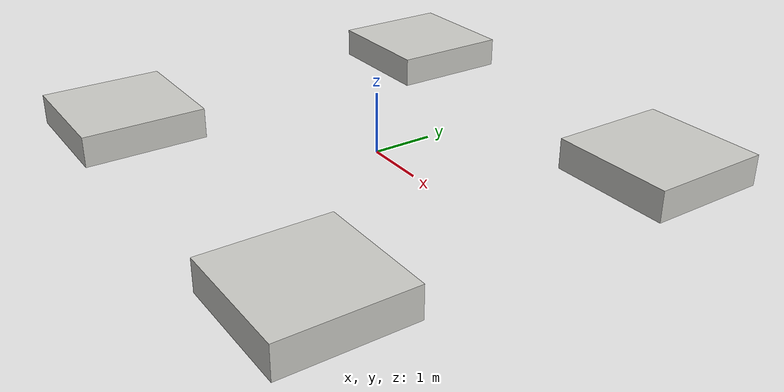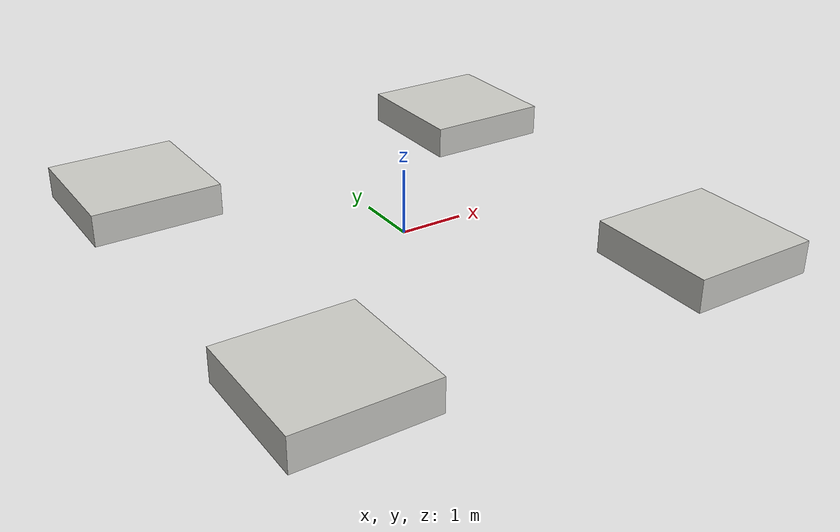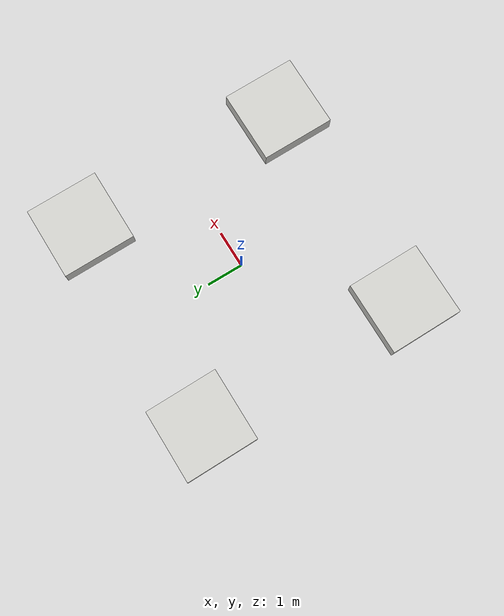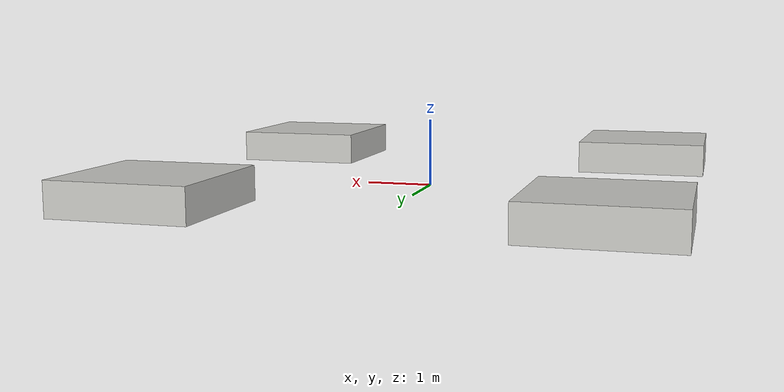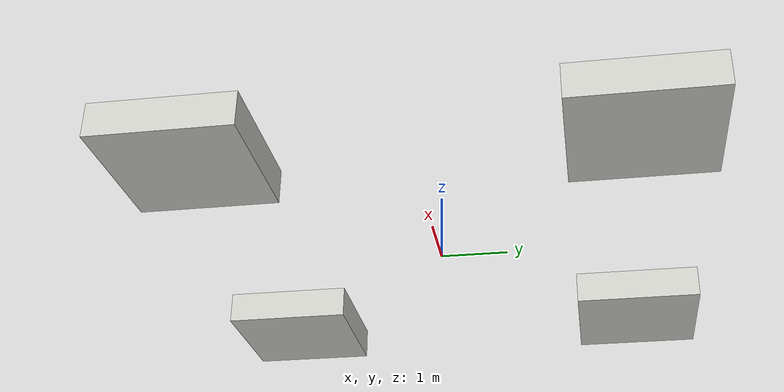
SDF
<?xml version='1.0'?>
<sdf version='1.7'>
  <model name='obstacles'>
    <link name='Wall_16'>
      <pose>-3 -3 0 0 -0 0</pose>
      <self_collide>0</self_collide>
      <enable_wind>0</enable_wind>
      <kinematic>0</kinematic>
      <visual name='Wall_16_Visual'>
        <pose>0 0 0.25 0 -0 0</pose>
        <geometry>
          <box>
            <size>2 2 0.5</size>
          </box>
        </geometry>
        <material>
          <script>
            <uri>file://media/materials/scripts/gazebo.material</uri>
            <name>Gazebo/CeilingTiled</name>
          </script>
          <ambient>0.760784 0.662745 0.627451 1</ambient>
          <shader type='pixel'/>
        </material>
        <meta>
          <layer>0</layer>
        </meta>
        <transparency>0</transparency>
        <cast_shadows>1</cast_shadows>
      </visual>
      <collision name='Wall_16_Collision'>
        <laser_retro>0</laser_retro>
        <max_contacts>10</max_contacts>
        <pose>0 0 0.25 0 -0 0</pose>
        <geometry>
          <box>
            <size>2 2 0.5</size>
          </box>
        </geometry>
        <surface>
          <friction>
            <ode>
              <mu>1</mu>
              <mu2>1</mu2>
              <fdir1>0 0 0</fdir1>
              <slip1>0</slip1>
              <slip2>0</slip2>
            </ode>
            <torsional>
              <coefficient>1</coefficient>
              <patch_radius>0</patch_radius>
              <surface_radius>0</surface_radius>
              <use_patch_radius>1</use_patch_radius>
              <ode>
                <slip>0</slip>
              </ode>
            </torsional>
          </friction>
          <bounce>
            <restitution_coefficient>0</restitution_coefficient>
            <threshold>1e+06</threshold>
          </bounce>
          <contact>
            <collide_without_contact>0</collide_without_contact>
            <collide_without_contact_bitmask>1</collide_without_contact_bitmask>
            <collide_bitmask>1</collide_bitmask>
            <ode>
              <soft_cfm>0</soft_cfm>
              <soft_erp>0.2</soft_erp>
              <kp>1e+13</kp>
              <kd>1</kd>
              <max_vel>0.01</max_vel>
              <min_depth>0</min_depth>
            </ode>
            <bullet>
              <split_impulse>1</split_impulse>
              <split_impulse_penetration_threshold>-0.01</split_impulse_penetration_threshold>
              <soft_cfm>0</soft_cfm>
              <soft_erp>0.2</soft_erp>
              <kp>1e+13</kp>
              <kd>1</kd>
            </bullet>
          </contact>
        </surface>
      </collision>
    </link>
    <link name='Wall_19'>
      <pose>3 3 0 0 -0 0</pose>
      <self_collide>0</self_collide>
      <enable_wind>0</enable_wind>
      <kinematic>0</kinematic>
      <visual name='Wall_19_Visual'>
        <pose>0 0 0.25 0 -0 0</pose>
        <geometry>
          <box>
            <size>2 2 0.5</size>
          </box>
        </geometry>
        <material>
          <script>
            <uri>file://media/materials/scripts/gazebo.material</uri>
            <name>Gazebo/CeilingTiled</name>
          </script>
          <ambient>0.760784 0.662745 0.627451 1</ambient>
          <shader type='pixel'/>
        </material>
        <meta>
          <layer>0</layer>
        </meta>
        <transparency>0</transparency>
        <cast_shadows>1</cast_shadows>
      </visual>
      <collision name='Wall_19_Collision'>
        <laser_retro>0</laser_retro>
        <max_contacts>10</max_contacts>
        <pose>0 0 0.25 0 -0 0</pose>
        <geometry>
          <box>
            <size>2 2 0.5</size>
          </box>
        </geometry>
        <surface>
          <friction>
            <ode>
              <mu>1</mu>
              <mu2>1</mu2>
              <fdir1>0 0 0</fdir1>
              <slip1>0</slip1>
              <slip2>0</slip2>
            </ode>
            <torsional>
              <coefficient>1</coefficient>
              <patch_radius>0</patch_radius>
              <surface_radius>0</surface_radius>
              <use_patch_radius>1</use_patch_radius>
              <ode>
                <slip>0</slip>
              </ode>
            </torsional>
          </friction>
          <bounce>
            <restitution_coefficient>0</restitution_coefficient>
            <threshold>1e+06</threshold>
          </bounce>
          <contact>
            <collide_without_contact>0</collide_without_contact>
            <collide_without_contact_bitmask>1</collide_without_contact_bitmask>
            <collide_bitmask>1</collide_bitmask>
            <ode>
              <soft_cfm>0</soft_cfm>
              <soft_erp>0.2</soft_erp>
              <kp>1e+13</kp>
              <kd>1</kd>
              <max_vel>0.01</max_vel>
              <min_depth>0</min_depth>
            </ode>
            <bullet>
              <split_impulse>1</split_impulse>
              <split_impulse_penetration_threshold>-0.01</split_impulse_penetration_threshold>
              <soft_cfm>0</soft_cfm>
              <soft_erp>0.2</soft_erp>
              <kp>1e+13</kp>
              <kd>1</kd>
            </bullet>
          </contact>
        </surface>
      </collision>
    </link>
    <link name='Wall_21'>
      <pose>3 -3 0 0 -0 0</pose>
      <self_collide>0</self_collide>
      <enable_wind>0</enable_wind>
      <kinematic>0</kinematic>
      <visual name='Wall_21_Visual'>
        <pose>0 0 0.25 0 -0 0</pose>
        <geometry>
          <box>
            <size>2 2 0.5</size>
          </box>
        </geometry>
        <material>
          <script>
            <uri>file://media/materials/scripts/gazebo.material</uri>
            <name>Gazebo/CeilingTiled</name>
          </script>
          <ambient>0.760784 0.662745 0.627451 1</ambient>
          <shader type='pixel'/>
        </material>
        <meta>
          <layer>0</layer>
        </meta>
        <transparency>0</transparency>
        <cast_shadows>1</cast_shadows>
      </visual>
      <collision name='Wall_21_Collision'>
        <laser_retro>0</laser_retro>
        <max_contacts>10</max_contacts>
        <pose>0 0 0.25 0 -0 0</pose>
        <geometry>
          <box>
            <size>2 2 0.5</size>
          </box>
        </geometry>
        <surface>
          <friction>
            <ode>
              <mu>1</mu>
              <mu2>1</mu2>
              <fdir1>0 0 0</fdir1>
              <slip1>0</slip1>
              <slip2>0</slip2>
            </ode>
            <torsional>
              <coefficient>1</coefficient>
              <patch_radius>0</patch_radius>
              <surface_radius>0</surface_radius>
              <use_patch_radius>1</use_patch_radius>
              <ode>
                <slip>0</slip>
              </ode>
            </torsional>
          </friction>
          <bounce>
            <restitution_coefficient>0</restitution_coefficient>
            <threshold>1e+06</threshold>
          </bounce>
          <contact>
            <collide_without_contact>0</collide_without_contact>
            <collide_without_contact_bitmask>1</collide_without_contact_bitmask>
            <collide_bitmask>1</collide_bitmask>
            <ode>
              <soft_cfm>0</soft_cfm>
              <soft_erp>0.2</soft_erp>
              <kp>1e+13</kp>
              <kd>1</kd>
              <max_vel>0.01</max_vel>
              <min_depth>0</min_depth>
            </ode>
            <bullet>
              <split_impulse>1</split_impulse>
              <split_impulse_penetration_threshold>-0.01</split_impulse_penetration_threshold>
              <soft_cfm>0</soft_cfm>
              <soft_erp>0.2</soft_erp>
              <kp>1e+13</kp>
              <kd>1</kd>
            </bullet>
          </contact>
        </surface>
      </collision>
    </link>
    <link name='Wall_28'>
      <pose>-3 3 0 0 -0 0</pose>
      <self_collide>0</self_collide>
      <enable_wind>0</enable_wind>
      <kinematic>0</kinematic>
      <visual name='Wall_28_Visual'>
        <pose>0 0 0.25 0 -0 0</pose>
        <geometry>
          <box>
            <size>2 2 0.5</size>
          </box>
        </geometry>
        <material>
          <script>
            <uri>file://media/materials/scripts/gazebo.material</uri>
            <name>Gazebo/CeilingTiled</name>
          </script>
          <ambient>0.760784 0.662745 0.627451 1</ambient>
          <shader type='pixel'/>
        </material>
        <meta>
          <layer>0</layer>
        </meta>
        <transparency>0</transparency>
        <cast_shadows>1</cast_shadows>
      </visual>
      <collision name='Wall_28_Collision'>
        <laser_retro>0</laser_retro>
        <max_contacts>10</max_contacts>
        <pose>0 0 0.25 0 -0 0</pose>
        <geometry>
          <box>
            <size>2 2 0.5</size>
          </box>
        </geometry>
        <surface>
          <friction>
            <ode>
              <mu>1</mu>
              <mu2>1</mu2>
              <fdir1>0 0 0</fdir1>
              <slip1>0</slip1>
              <slip2>0</slip2>
            </ode>
            <torsional>
              <coefficient>1</coefficient>
              <patch_radius>0</patch_radius>
              <surface_radius>0</surface_radius>
              <use_patch_radius>1</use_patch_radius>
              <ode>
                <slip>0</slip>
              </ode>
            </torsional>
          </friction>
          <bounce>
            <restitution_coefficient>0</restitution_coefficient>
            <threshold>1e+06</threshold>
          </bounce>
          <contact>
            <collide_without_contact>0</collide_without_contact>
            <collide_without_contact_bitmask>1</collide_without_contact_bitmask>
            <collide_bitmask>1</collide_bitmask>
            <ode>
              <soft_cfm>0</soft_cfm>
              <soft_erp>0.2</soft_erp>
              <kp>1e+13</kp>
              <kd>1</kd>
              <max_vel>0.01</max_vel>
              <min_depth>0</min_depth>
            </ode>
            <bullet>
              <split_impulse>1</split_impulse>
              <split_impulse_penetration_threshold>-0.01</split_impulse_penetration_threshold>
              <soft_cfm>0</soft_cfm>
              <soft_erp>0.2</soft_erp>
              <kp>1e+13</kp>
              <kd>1</kd>
            </bullet>
          </contact>
        </surface>
      </collision>
    </link>
    <static>1</static>
    <allow_auto_disable>1</allow_auto_disable>
  </model>
</sdf>
